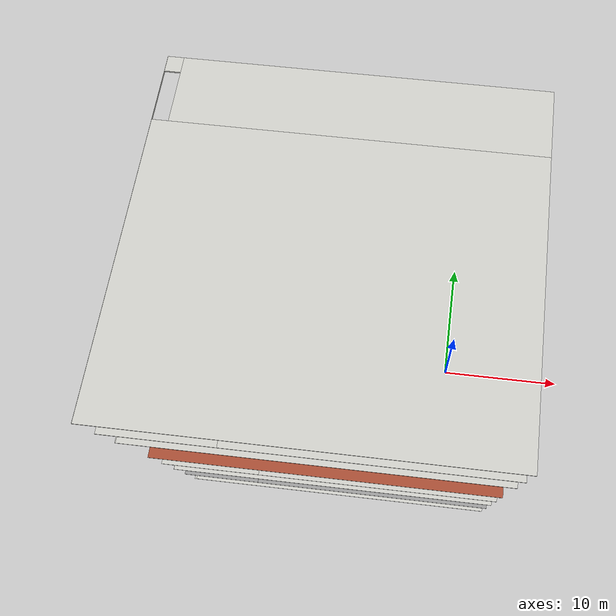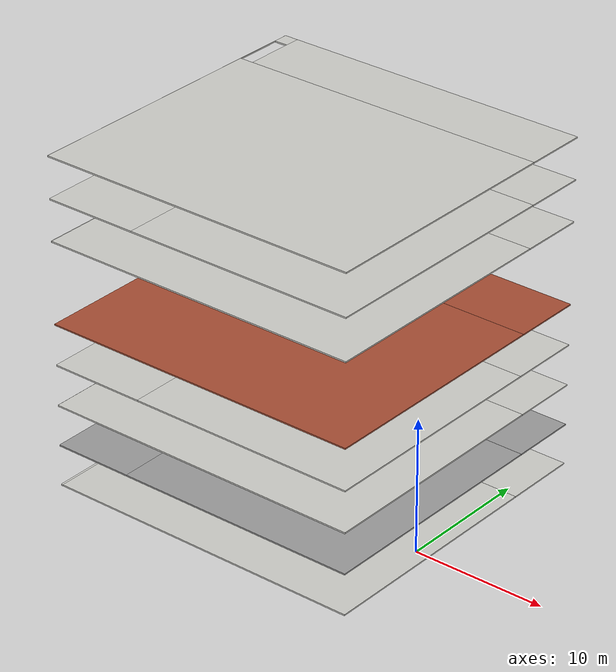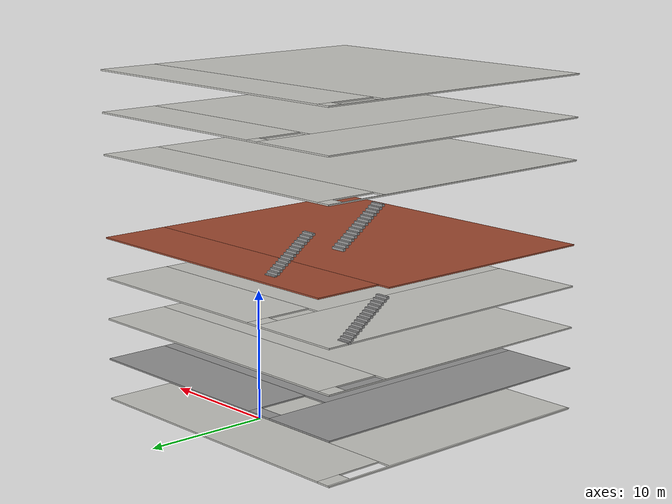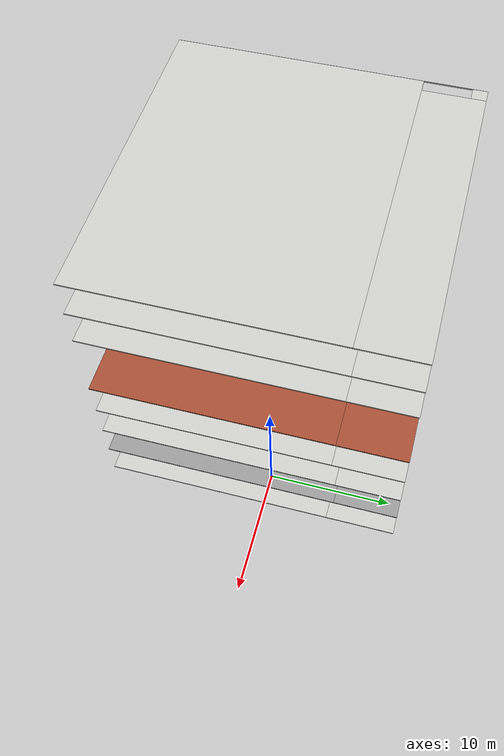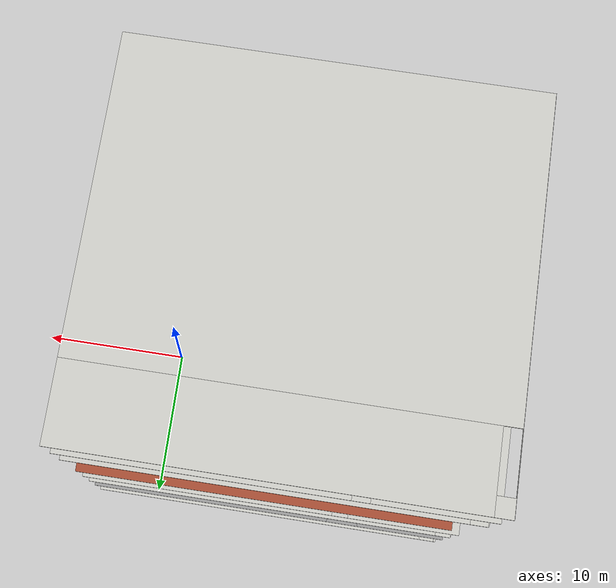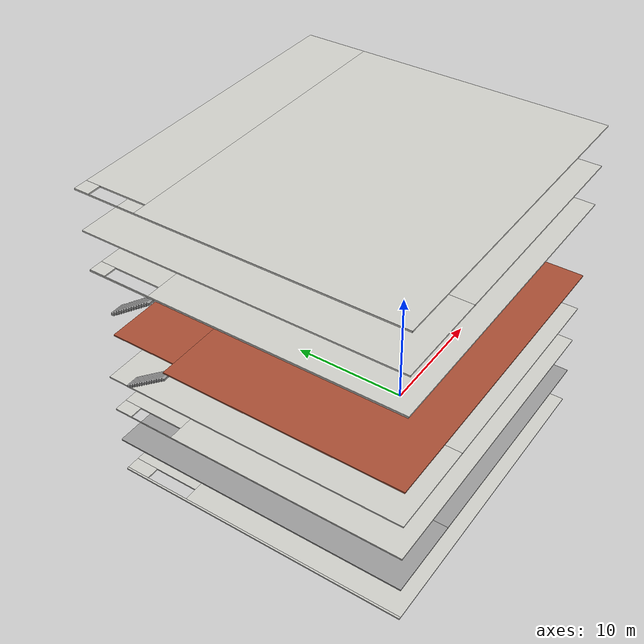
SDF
<sdf version="1.7">
 <model name="high_building">
  <pose>-8.08785 -0.655 0 0 -0 0</pose>
  <link name="Floor_0">
   <pose>0.009156 -0 3 0 -0 0</pose>
   <visual name="Floor_0_Visual_0">
    <pose>-11.8375 0 0.05 0 -0 0</pose>
    <geometry><box><size>0.151533 23.0012 0.1</size></box></geometry>
    <material>
     <script><uri>file://media/materials/scripts/gazebo.material</uri><name>Gazebo/CeilingTiled</name></script>
     <ambient>1 1 1 1</ambient>
    </material>
    <meta><layer>1</layer></meta>
   </visual>
   <collision name="Floor_0_Collision_0">
    <geometry><box><size>0.151533 23.0012 0.1</size></box></geometry>
    <pose>-11.8375 0 0.05 0 -0 0</pose>
   </collision>
   <visual name="Floor_0_Visual_1">
    <pose>0.075766 -2.684 0.05 0 -0 0</pose>
    <geometry><box><size>23.6751 17.6332 0.1</size></box></geometry>
    <material>
     <script><uri>file://media/materials/scripts/gazebo.material</uri><name>Gazebo/CeilingTiled</name></script>
     <ambient>1 1 1 1</ambient>
    </material>
    <meta><layer>1</layer></meta>
   </visual>
   <collision name="Floor_0_Collision_1">
    <geometry><box><size>23.6751 17.6332 0.1</size></box></geometry>
    <pose>0.075766 -2.684 0.05 0 -0 0</pose>
   </collision>
   <visual name="Floor_0_Visual_2">
    <pose>0.575766 8.81661 0.05 0 -0 0</pose>
    <geometry><box><size>22.6751 5.36801 0.1</size></box></geometry>
    <material>
     <script><uri>file://media/materials/scripts/gazebo.material</uri><name>Gazebo/CeilingTiled</name></script>
     <ambient>1 1 1 1</ambient>
    </material>
    <meta><layer>1</layer></meta>
   </visual>
   <collision name="Floor_0_Collision_2">
    <geometry><box><size>22.6751 5.36801 0.1</size></box></geometry>
    <pose>0.575766 8.81661 0.05 0 -0 0</pose>
   </collision>
   <visual name="Floor_0_Visual_3">
    <pose>-11.2618 10.5666 0.05 0 -0 0</pose>
    <geometry><box><size>1 1.86801 0.1</size></box></geometry>
    <material>
     <script><uri>file://media/materials/scripts/gazebo.material</uri><name>Gazebo/CeilingTiled</name></script>
     <ambient>1 1 1 1</ambient>
    </material>
    <meta><layer>1</layer></meta>
   </visual>
   <collision name="Floor_0_Collision_3">
    <geometry><box><size>1 1.86801 0.1</size></box></geometry>
    <pose>-11.2618 10.5666 0.05 0 -0 0</pose>
   </collision>
  </link>
  <link name="Floor_1">
   <pose>0.009156 -0 6 0 -0 0</pose>
   <visual name="Floor_1_Visual_0">
    <pose>-8.99477 0 0.05 0 -0 0</pose>
    <geometry><box><size>5.83706 23.0012 0.1</size></box></geometry>
    <material>
     <script><uri>file://media/materials/scripts/gazebo.material</uri><name>Gazebo/Grey</name></script>
     <ambient>1 1 1 1</ambient>
    </material>
    <meta><layer>2</layer></meta>
   </visual>
   <collision name="Floor_1_Collision_0">
    <geometry><box><size>5.83706 23.0012 0.1</size></box></geometry>
    <pose>-8.99477 0 0.05 0 -0 0</pose>
   </collision>
   <visual name="Floor_1_Visual_1">
    <pose>2.91853 -2.44136 0.05 0 -0 0</pose>
    <geometry><box><size>17.9895 18.1185 0.1</size></box></geometry>
    <material>
     <script><uri>file://media/materials/scripts/gazebo.material</uri><name>Gazebo/Grey</name></script>
     <ambient>1 1 1 1</ambient>
    </material>
    <meta><layer>2</layer></meta>
   </visual>
   <collision name="Floor_1_Collision_1">
    <geometry><box><size>17.9895 18.1185 0.1</size></box></geometry>
    <pose>2.91853 -2.44136 0.05 0 -0 0</pose>
   </collision>
   <visual name="Floor_1_Visual_2">
    <pose>3.95054 9.05926 0.05 0 -0 0</pose>
    <geometry><box><size>15.9255 4.88271 0.1</size></box></geometry>
    <material>
     <script><uri>file://media/materials/scripts/gazebo.material</uri><name>Gazebo/Grey</name></script>
     <ambient>1 1 1 1</ambient>
    </material>
    <meta><layer>2</layer></meta>
   </visual>
   <collision name="Floor_1_Collision_2">
    <geometry><box><size>15.9255 4.88271 0.1</size></box></geometry>
    <pose>3.95054 9.05926 0.05 0 -0 0</pose>
   </collision>
   <visual name="Floor_1_Visual_3">
    <pose>-5.04424 10.9955 0.05 0 -0 0</pose>
    <geometry><box><size>2.06401 1.01031 0.1</size></box></geometry>
    <material>
     <script><uri>file://media/materials/scripts/gazebo.material</uri><name>Gazebo/Grey</name></script>
     <ambient>1 1 1 1</ambient>
    </material>
    <meta><layer>2</layer></meta>
   </visual>
   <collision name="Floor_1_Collision_3">
    <geometry><box><size>2.06401 1.01031 0.1</size></box></geometry>
    <pose>-5.04424 10.9955 0.05 0 -0 0</pose>
   </collision>
  </link>
  <link name="Floor_10">
   <pose>0.009156 -0 21 0 -0 0</pose>
   <visual name="Floor_10_Visual_0">
    <pose>-11.8873 0 0.05 0 -0 0</pose>
    <geometry><box><size>0.052045 23.0012 0.1</size></box></geometry>
    <material>
     <script><uri>file://media/materials/scripts/gazebo.material</uri><name>Gazebo/CeilingTiled</name></script>
     <ambient>1 1 1 1</ambient>
    </material>
    <meta><layer>7</layer></meta>
   </visual>
   <collision name="Floor_10_Collision_0">
    <geometry><box><size>0.052045 23.0012 0.1</size></box></geometry>
    <pose>-11.8873 0 0.05 0 -0 0</pose>
   </collision>
   <visual name="Floor_10_Visual_1">
    <pose>0.026023 -2.34881 0.05 0 -0 0</pose>
    <geometry><box><size>23.7746 18.3036 0.1</size></box></geometry>
    <material>
     <script><uri>file://media/materials/scripts/gazebo.material</uri><name>Gazebo/CeilingTiled</name></script>
     <ambient>1 1 1 1</ambient>
    </material>
    <meta><layer>7</layer></meta>
   </visual>
   <collision name="Floor_10_Collision_1">
    <geometry><box><size>23.7746 18.3036 0.1</size></box></geometry>
    <pose>0.026023 -2.34881 0.05 0 -0 0</pose>
   </collision>
   <visual name="Floor_10_Visual_2">
    <pose>0.526023 9.1518 0.05 0 -0 0</pose>
    <geometry><box><size>22.7746 4.69762 0.1</size></box></geometry>
    <material>
     <script><uri>file://media/materials/scripts/gazebo.material</uri><name>Gazebo/CeilingTiled</name></script>
     <ambient>1 1 1 1</ambient>
    </material>
    <meta><layer>7</layer></meta>
   </visual>
   <collision name="Floor_10_Collision_2">
    <geometry><box><size>22.7746 4.69762 0.1</size></box></geometry>
    <pose>0.526023 9.1518 0.05 0 -0 0</pose>
   </collision>
   <visual name="Floor_10_Visual_3">
    <pose>-11.3613 10.9018 0.05 0 -0 0</pose>
    <geometry><box><size>1 1.19762 0.1</size></box></geometry>
    <material>
     <script><uri>file://media/materials/scripts/gazebo.material</uri><name>Gazebo/CeilingTiled</name></script>
     <ambient>1 1 1 1</ambient>
    </material>
    <meta><layer>7</layer></meta>
   </visual>
   <collision name="Floor_10_Collision_3">
    <geometry><box><size>1 1.19762 0.1</size></box></geometry>
    <pose>-11.3613 10.9018 0.05 0 -0 0</pose>
   </collision>
  </link>
  <link name="Floor_11">
   <pose>0.009156 -0 24 0 -0 0</pose>
   <visual name="Floor_11_Visual_0">
    <pose>-8.49253 0 0.05 0 -0 0</pose>
    <geometry><box><size>6.84155 23.0012 0.1</size></box></geometry>
    <material>
     <script><uri>file://media/materials/scripts/gazebo.material</uri><name>Gazebo/CeilingTiled</name></script>
     <ambient>1 1 1 1</ambient>
    </material>
    <meta><layer>8</layer></meta>
   </visual>
   <collision name="Floor_11_Collision_0">
    <geometry><box><size>6.84155 23.0012 0.1</size></box></geometry>
    <pose>-8.49253 0 0.05 0 -0 0</pose>
   </collision>
   <visual name="Floor_11_Visual_1">
    <pose>3.42077 -2.26086 0.05 0 -0 0</pose>
    <geometry><box><size>16.9851 18.4795 0.1</size></box></geometry>
    <material>
     <script><uri>file://media/materials/scripts/gazebo.material</uri><name>Gazebo/CeilingTiled</name></script>
     <ambient>1 1 1 1</ambient>
    </material>
    <meta><layer>8</layer></meta>
   </visual>
   <collision name="Floor_11_Collision_1">
    <geometry><box><size>16.9851 18.4795 0.1</size></box></geometry>
    <pose>3.42077 -2.26086 0.05 0 -0 0</pose>
   </collision>
   <visual name="Floor_11_Visual_2">
    <pose>3.92077 9.23975 0.05 0 -0 0</pose>
    <geometry><box><size>15.9851 4.52172 0.1</size></box></geometry>
    <material>
     <script><uri>file://media/materials/scripts/gazebo.material</uri><name>Gazebo/CeilingTiled</name></script>
     <ambient>1 1 1 1</ambient>
    </material>
    <meta><layer>8</layer></meta>
   </visual>
   <collision name="Floor_11_Collision_2">
    <geometry><box><size>15.9851 4.52172 0.1</size></box></geometry>
    <pose>3.92077 9.23975 0.05 0 -0 0</pose>
   </collision>
   <visual name="Floor_11_Visual_3">
    <pose>-4.57176 10.9898 0.05 0 -0 0</pose>
    <geometry><box><size>1 1.02172 0.1</size></box></geometry>
    <material>
     <script><uri>file://media/materials/scripts/gazebo.material</uri><name>Gazebo/CeilingTiled</name></script>
     <ambient>1 1 1 1</ambient>
    </material>
    <meta><layer>8</layer></meta>
   </visual>
   <collision name="Floor_11_Collision_3">
    <geometry><box><size>1 1.02172 0.1</size></box></geometry>
    <pose>-4.57176 10.9898 0.05 0 -0 0</pose>
   </collision>
  </link>
  <link name="Floor_12">
   <pose>0.009156 -0 27 0 -0 0</pose>
   <visual name="Floor_12_Visual_0">
    <pose>-11.9049 0 0.05 0 -0 0</pose>
    <geometry><box><size>0.016868 23.0012 0.1</size></box></geometry>
    <material>
     <script><uri>file://media/materials/scripts/gazebo.material</uri><name>Gazebo/CeilingTiled</name></script>
     <ambient>1 1 1 1</ambient>
    </material>
    <meta><layer>9</layer></meta>
   </visual>
   <collision name="Floor_12_Collision_0">
    <geometry><box><size>0.016868 23.0012 0.1</size></box></geometry>
    <pose>-11.9049 0 0.05 0 -0 0</pose>
   </collision>
   <visual name="Floor_12_Visual_1">
    <pose>0.008434 -2.29604 0.05 0 -0 0</pose>
    <geometry><box><size>23.8097 18.4091 0.1</size></box></geometry>
    <material>
     <script><uri>file://media/materials/scripts/gazebo.material</uri><name>Gazebo/CeilingTiled</name></script>
     <ambient>1 1 1 1</ambient>
    </material>
    <meta><layer>9</layer></meta>
   </visual>
   <collision name="Floor_12_Collision_1">
    <geometry><box><size>23.8097 18.4091 0.1</size></box></geometry>
    <pose>0.008434 -2.29604 0.05 0 -0 0</pose>
   </collision>
   <visual name="Floor_12_Visual_2">
    <pose>0.508434 9.20457 0.05 0 -0 0</pose>
    <geometry><box><size>22.8097 4.59208 0.1</size></box></geometry>
    <material>
     <script><uri>file://media/materials/scripts/gazebo.material</uri><name>Gazebo/CeilingTiled</name></script>
     <ambient>1 1 1 1</ambient>
    </material>
    <meta><layer>9</layer></meta>
   </visual>
   <collision name="Floor_12_Collision_2">
    <geometry><box><size>22.8097 4.59208 0.1</size></box></geometry>
    <pose>0.508434 9.20457 0.05 0 -0 0</pose>
   </collision>
   <visual name="Floor_12_Visual_3">
    <pose>-11.3964 10.9546 0.05 0 -0 0</pose>
    <geometry><box><size>1 1.09208 0.1</size></box></geometry>
    <material>
     <script><uri>file://media/materials/scripts/gazebo.material</uri><name>Gazebo/CeilingTiled</name></script>
     <ambient>1 1 1 1</ambient>
    </material>
    <meta><layer>9</layer></meta>
   </visual>
   <collision name="Floor_12_Collision_3">
    <geometry><box><size>1 1.09208 0.1</size></box></geometry>
    <pose>-11.3964 10.9546 0.05 0 -0 0</pose>
   </collision>
  </link>
  <link name="Floor_6">
   <pose>0.009156 -0 9 0 -0 0</pose>
   <visual name="Floor_6_Visual_0">
    <pose>-11.9073 0 0.05 0 -0 0</pose>
    <geometry><box><size>0.01196 23.0012 0.1</size></box></geometry>
    <material>
     <script><uri>file://media/materials/scripts/gazebo.material</uri><name>Gazebo/CeilingTiled</name></script>
     <ambient>1 1 1 1</ambient>
    </material>
    <meta><layer>3</layer></meta>
   </visual>
   <collision name="Floor_6_Collision_0">
    <geometry><box><size>0.01196 23.0012 0.1</size></box></geometry>
    <pose>-11.9073 0 0.05 0 -0 0</pose>
   </collision>
   <visual name="Floor_6_Visual_1">
    <pose>0.00598 -2.45139 0.05 0 -0 0</pose>
    <geometry><box><size>23.8147 18.0985 0.1</size></box></geometry>
    <material>
     <script><uri>file://media/materials/scripts/gazebo.material</uri><name>Gazebo/CeilingTiled</name></script>
     <ambient>1 1 1 1</ambient>
    </material>
    <meta><layer>3</layer></meta>
   </visual>
   <collision name="Floor_6_Collision_1">
    <geometry><box><size>23.8147 18.0985 0.1</size></box></geometry>
    <pose>0.00598 -2.45139 0.05 0 -0 0</pose>
   </collision>
   <visual name="Floor_6_Visual_2">
    <pose>0.50598 9.04923 0.05 0 -0 0</pose>
    <geometry><box><size>22.8147 4.90277 0.1</size></box></geometry>
    <material>
     <script><uri>file://media/materials/scripts/gazebo.material</uri><name>Gazebo/CeilingTiled</name></script>
     <ambient>1 1 1 1</ambient>
    </material>
    <meta><layer>3</layer></meta>
   </visual>
   <collision name="Floor_6_Collision_2">
    <geometry><box><size>22.8147 4.90277 0.1</size></box></geometry>
    <pose>0.50598 9.04923 0.05 0 -0 0</pose>
   </collision>
   <visual name="Floor_6_Visual_3">
    <pose>-11.4013 10.7992 0.05 0 -0 0</pose>
    <geometry><box><size>1 1.40277 0.1</size></box></geometry>
    <material>
     <script><uri>file://media/materials/scripts/gazebo.material</uri><name>Gazebo/CeilingTiled</name></script>
     <ambient>1 1 1 1</ambient>
    </material>
    <meta><layer>3</layer></meta>
   </visual>
   <collision name="Floor_6_Collision_3">
    <geometry><box><size>1 1.40277 0.1</size></box></geometry>
    <pose>-11.4013 10.7992 0.05 0 -0 0</pose>
   </collision>
  </link>
  <link name="Floor_7">
   <pose>0.009156 -0 12 0 -0 0</pose>
   <visual name="Floor_7_Visual_0">
    <pose>-8.42544 0 0.05 0 -0 0</pose>
    <geometry><box><size>6.97573 23.0012 0.1</size></box></geometry>
    <material>
     <script><uri>file://media/materials/scripts/gazebo.material</uri><name>Gazebo/CeilingTiled</name></script>
     <ambient>1 1 1 1</ambient>
    </material>
    <meta><layer>4</layer></meta>
   </visual>
   <collision name="Floor_7_Collision_0">
    <geometry><box><size>6.97573 23.0012 0.1</size></box></geometry>
    <pose>-8.42544 0 0.05 0 -0 0</pose>
   </collision>
   <visual name="Floor_7_Visual_1">
    <pose>3.48787 -2.63097 0.05 0 -0 0</pose>
    <geometry><box><size>16.8509 17.7393 0.1</size></box></geometry>
    <material>
     <script><uri>file://media/materials/scripts/gazebo.material</uri><name>Gazebo/CeilingTiled</name></script>
     <ambient>1 1 1 1</ambient>
    </material>
    <meta><layer>4</layer></meta>
   </visual>
   <collision name="Floor_7_Collision_1">
    <geometry><box><size>16.8509 17.7393 0.1</size></box></geometry>
    <pose>3.48787 -2.63097 0.05 0 -0 0</pose>
   </collision>
   <visual name="Floor_7_Visual_2">
    <pose>3.98787 8.86965 0.05 0 -0 0</pose>
    <geometry><box><size>15.8509 5.26193 0.1</size></box></geometry>
    <material>
     <script><uri>file://media/materials/scripts/gazebo.material</uri><name>Gazebo/CeilingTiled</name></script>
     <ambient>1 1 1 1</ambient>
    </material>
    <meta><layer>4</layer></meta>
   </visual>
   <collision name="Floor_7_Collision_2">
    <geometry><box><size>15.8509 5.26193 0.1</size></box></geometry>
    <pose>3.98787 8.86965 0.05 0 -0 0</pose>
   </collision>
   <visual name="Floor_7_Visual_3">
    <pose>-4.43757 10.6196 0.05 0 -0 0</pose>
    <geometry><box><size>1 1.76193 0.1</size></box></geometry>
    <material>
     <script><uri>file://media/materials/scripts/gazebo.material</uri><name>Gazebo/CeilingTiled</name></script>
     <ambient>1 1 1 1</ambient>
    </material>
    <meta><layer>4</layer></meta>
   </visual>
   <collision name="Floor_7_Collision_3">
    <geometry><box><size>1 1.76193 0.1</size></box></geometry>
    <pose>-4.43757 10.6196 0.05 0 -0 0</pose>
   </collision>
  </link>
  <link name="Floor_8">
   <pose>0.009156 -0 15 0 -0 0</pose>
   <visual name="Floor_8_Visual_0">
    <pose>0 -2.54229 0.05 0 -0 0</pose>
    <geometry><box><size>23.8266 17.9166 0.1</size></box></geometry>
    <material>
     <script><uri>file://media/materials/scripts/gazebo.material</uri><name>Gazebo/Bricks</name></script>
     <ambient>1 1 1 1</ambient>
    </material>
    <meta><layer>5</layer></meta>
   </visual>
   <collision name="Floor_8_Collision_0">
    <geometry><box><size>23.8266 17.9166 0.1</size></box></geometry>
    <pose>0 -2.54229 0.05 0 -0 0</pose>
   </collision>
   <visual name="Floor_8_Visual_1">
    <pose>0.490844 8.95832 0.05 0 -0 0</pose>
    <geometry><box><size>22.8449 5.08458 0.1</size></box></geometry>
    <material>
     <script><uri>file://media/materials/scripts/gazebo.material</uri><name>Gazebo/Bricks</name></script>
     <ambient>1 1 1 1</ambient>
    </material>
    <meta><layer>5</layer></meta>
   </visual>
   <collision name="Floor_8_Collision_1">
    <geometry><box><size>22.8449 5.08458 0.1</size></box></geometry>
    <pose>0.490844 8.95832 0.05 0 -0 0</pose>
   </collision>
  </link>
  <link name="Stairs_7">
   <visual name="Stairs_7_Visual_0">
    <pose>-11.4225 9.79936 12.0833 0 -0 0</pose>
    <geometry><box><size>1 0.233333 0.166667</size></box></geometry>
    <material>
     <script><uri>file://media/materials/scripts/gazebo.material</uri><name>Gazebo/Grey</name></script>
     <ambient>1 1 1 1</ambient>
    </material>
    <meta><layer>4</layer></meta>
   </visual>
   <collision name="Stairs_7_Collision_0">
    <geometry><box><size>1 0.233333 0.166667</size></box></geometry>
    <pose>-11.4225 9.79936 12.0833 0 -0 0</pose>
   </collision>
   <visual name="Stairs_7_Visual_1">
    <pose>-11.4225 9.56603 12.25 0 -0 0</pose>
    <geometry><box><size>1 0.233333 0.166667</size></box></geometry>
    <material>
     <script><uri>file://media/materials/scripts/gazebo.material</uri><name>Gazebo/Grey</name></script>
     <ambient>1 1 1 1</ambient>
    </material>
    <meta><layer>4</layer></meta>
   </visual>
   <collision name="Stairs_7_Collision_1">
    <geometry><box><size>1 0.233333 0.166667</size></box></geometry>
    <pose>-11.4225 9.56603 12.25 0 -0 0</pose>
   </collision>
   <visual name="Stairs_7_Visual_2">
    <pose>-11.4225 9.33269 12.4167 0 -0 0</pose>
    <geometry><box><size>1 0.233333 0.166667</size></box></geometry>
    <material>
     <script><uri>file://media/materials/scripts/gazebo.material</uri><name>Gazebo/Grey</name></script>
     <ambient>1 1 1 1</ambient>
    </material>
    <meta><layer>4</layer></meta>
   </visual>
   <collision name="Stairs_7_Collision_2">
    <geometry><box><size>1 0.233333 0.166667</size></box></geometry>
    <pose>-11.4225 9.33269 12.4167 0 -0 0</pose>
   </collision>
   <visual name="Stairs_7_Visual_3">
    <pose>-11.4225 9.09936 12.5833 0 -0 0</pose>
    <geometry><box><size>1 0.233333 0.166667</size></box></geometry>
    <material>
     <script><uri>file://media/materials/scripts/gazebo.material</uri><name>Gazebo/Grey</name></script>
     <ambient>1 1 1 1</ambient>
    </material>
    <meta><layer>4</layer></meta>
   </visual>
   <collision name="Stairs_7_Collision_3">
    <geometry><box><size>1 0.233333 0.166667</size></box></geometry>
    <pose>-11.4225 9.09936 12.5833 0 -0 0</pose>
   </collision>
   <visual name="Stairs_7_Visual_4">
    <pose>-11.4225 8.86603 12.75 0 -0 0</pose>
    <geometry><box><size>1 0.233333 0.166667</size></box></geometry>
    <material>
     <script><uri>file://media/materials/scripts/gazebo.material</uri><name>Gazebo/Grey</name></script>
     <ambient>1 1 1 1</ambient>
    </material>
    <meta><layer>4</layer></meta>
   </visual>
   <collision name="Stairs_7_Collision_4">
    <geometry><box><size>1 0.233333 0.166667</size></box></geometry>
    <pose>-11.4225 8.86603 12.75 0 -0 0</pose>
   </collision>
   <visual name="Stairs_7_Visual_5">
    <pose>-11.4225 8.63269 12.9167 0 -0 0</pose>
    <geometry><box><size>1 0.233333 0.166667</size></box></geometry>
    <material>
     <script><uri>file://media/materials/scripts/gazebo.material</uri><name>Gazebo/Grey</name></script>
     <ambient>1 1 1 1</ambient>
    </material>
    <meta><layer>4</layer></meta>
   </visual>
   <collision name="Stairs_7_Collision_5">
    <geometry><box><size>1 0.233333 0.166667</size></box></geometry>
    <pose>-11.4225 8.63269 12.9167 0 -0 0</pose>
   </collision>
   <visual name="Stairs_7_Visual_6">
    <pose>-11.4225 8.39936 13.0833 0 -0 0</pose>
    <geometry><box><size>1 0.233333 0.166667</size></box></geometry>
    <material>
     <script><uri>file://media/materials/scripts/gazebo.material</uri><name>Gazebo/Grey</name></script>
     <ambient>1 1 1 1</ambient>
    </material>
    <meta><layer>4</layer></meta>
   </visual>
   <collision name="Stairs_7_Collision_6">
    <geometry><box><size>1 0.233333 0.166667</size></box></geometry>
    <pose>-11.4225 8.39936 13.0833 0 -0 0</pose>
   </collision>
   <visual name="Stairs_7_Visual_7">
    <pose>-11.4225 8.16603 13.25 0 -0 0</pose>
    <geometry><box><size>1 0.233333 0.166667</size></box></geometry>
    <material>
     <script><uri>file://media/materials/scripts/gazebo.material</uri><name>Gazebo/Grey</name></script>
     <ambient>1 1 1 1</ambient>
    </material>
    <meta><layer>4</layer></meta>
   </visual>
   <collision name="Stairs_7_Collision_7">
    <geometry><box><size>1 0.233333 0.166667</size></box></geometry>
    <pose>-11.4225 8.16603 13.25 0 -0 0</pose>
   </collision>
   <visual name="Stairs_7_Visual_8">
    <pose>-11.4225 7.93269 13.4167 0 -0 0</pose>
    <geometry><box><size>1 0.233333 0.166667</size></box></geometry>
    <material>
     <script><uri>file://media/materials/scripts/gazebo.material</uri><name>Gazebo/Grey</name></script>
     <ambient>1 1 1 1</ambient>
    </material>
    <meta><layer>4</layer></meta>
   </visual>
   <collision name="Stairs_7_Collision_8">
    <geometry><box><size>1 0.233333 0.166667</size></box></geometry>
    <pose>-11.4225 7.93269 13.4167 0 -0 0</pose>
   </collision>
   <visual name="Stairs_7_Visual_9">
    <pose>-11.4225 7.69936 13.5833 0 -0 0</pose>
    <geometry><box><size>1 0.233333 0.166667</size></box></geometry>
    <material>
     <script><uri>file://media/materials/scripts/gazebo.material</uri><name>Gazebo/Grey</name></script>
     <ambient>1 1 1 1</ambient>
    </material>
    <meta><layer>4</layer></meta>
   </visual>
   <collision name="Stairs_7_Collision_9">
    <geometry><box><size>1 0.233333 0.166667</size></box></geometry>
    <pose>-11.4225 7.69936 13.5833 0 -0 0</pose>
   </collision>
   <visual name="Stairs_7_Visual_10">
    <pose>-11.4225 7.46603 13.75 0 -0 0</pose>
    <geometry><box><size>1 0.233333 0.166667</size></box></geometry>
    <material>
     <script><uri>file://media/materials/scripts/gazebo.material</uri><name>Gazebo/Grey</name></script>
     <ambient>1 1 1 1</ambient>
    </material>
    <meta><layer>4</layer></meta>
   </visual>
   <collision name="Stairs_7_Collision_10">
    <geometry><box><size>1 0.233333 0.166667</size></box></geometry>
    <pose>-11.4225 7.46603 13.75 0 -0 0</pose>
   </collision>
   <visual name="Stairs_7_Visual_11">
    <pose>-11.4225 7.23269 13.9167 0 -0 0</pose>
    <geometry><box><size>1 0.233333 0.166667</size></box></geometry>
    <material>
     <script><uri>file://media/materials/scripts/gazebo.material</uri><name>Gazebo/Grey</name></script>
     <ambient>1 1 1 1</ambient>
    </material>
    <meta><layer>4</layer></meta>
   </visual>
   <collision name="Stairs_7_Collision_11">
    <geometry><box><size>1 0.233333 0.166667</size></box></geometry>
    <pose>-11.4225 7.23269 13.9167 0 -0 0</pose>
   </collision>
   <visual name="Stairs_7_Visual_12">
    <pose>-11.4225 6.99936 14.0833 0 -0 0</pose>
    <geometry><box><size>1 0.233333 0.166667</size></box></geometry>
    <material>
     <script><uri>file://media/materials/scripts/gazebo.material</uri><name>Gazebo/Grey</name></script>
     <ambient>1 1 1 1</ambient>
    </material>
    <meta><layer>4</layer></meta>
   </visual>
   <collision name="Stairs_7_Collision_12">
    <geometry><box><size>1 0.233333 0.166667</size></box></geometry>
    <pose>-11.4225 6.99936 14.0833 0 -0 0</pose>
   </collision>
   <visual name="Stairs_7_Visual_13">
    <pose>-11.4225 6.76603 14.25 0 -0 0</pose>
    <geometry><box><size>1 0.233333 0.166667</size></box></geometry>
    <material>
     <script><uri>file://media/materials/scripts/gazebo.material</uri><name>Gazebo/Grey</name></script>
     <ambient>1 1 1 1</ambient>
    </material>
    <meta><layer>4</layer></meta>
   </visual>
   <collision name="Stairs_7_Collision_13">
    <geometry><box><size>1 0.233333 0.166667</size></box></geometry>
    <pose>-11.4225 6.76603 14.25 0 -0 0</pose>
   </collision>
   <visual name="Stairs_7_Visual_14">
    <pose>-11.4225 6.53269 14.4167 0 -0 0</pose>
    <geometry><box><size>1 0.233333 0.166667</size></box></geometry>
    <material>
     <script><uri>file://media/materials/scripts/gazebo.material</uri><name>Gazebo/Grey</name></script>
     <ambient>1 1 1 1</ambient>
    </material>
    <meta><layer>4</layer></meta>
   </visual>
   <collision name="Stairs_7_Collision_14">
    <geometry><box><size>1 0.233333 0.166667</size></box></geometry>
    <pose>-11.4225 6.53269 14.4167 0 -0 0</pose>
   </collision>
  </link>
  <link name="Stairs_8">
   <visual name="Stairs_8_Visual_0">
    <pose>-4.63296 10.0456 15.0833 0 -0 0</pose>
    <geometry><box><size>1 0.233333 0.166667</size></box></geometry>
    <material>
     <script><uri>file://media/materials/scripts/gazebo.material</uri><name>Gazebo/Grey</name></script>
     <ambient>1 1 1 1</ambient>
    </material>
    <meta><layer>5</layer></meta>
   </visual>
   <collision name="Stairs_8_Collision_0">
    <geometry><box><size>1 0.233333 0.166667</size></box></geometry>
    <pose>-4.63296 10.0456 15.0833 0 -0 0</pose>
   </collision>
   <visual name="Stairs_8_Visual_1">
    <pose>-4.63296 9.81228 15.25 0 -0 0</pose>
    <geometry><box><size>1 0.233333 0.166667</size></box></geometry>
    <material>
     <script><uri>file://media/materials/scripts/gazebo.material</uri><name>Gazebo/Grey</name></script>
     <ambient>1 1 1 1</ambient>
    </material>
    <meta><layer>5</layer></meta>
   </visual>
   <collision name="Stairs_8_Collision_1">
    <geometry><box><size>1 0.233333 0.166667</size></box></geometry>
    <pose>-4.63296 9.81228 15.25 0 -0 0</pose>
   </collision>
   <visual name="Stairs_8_Visual_2">
    <pose>-4.63296 9.57894 15.4167 0 -0 0</pose>
    <geometry><box><size>1 0.233333 0.166667</size></box></geometry>
    <material>
     <script><uri>file://media/materials/scripts/gazebo.material</uri><name>Gazebo/Grey</name></script>
     <ambient>1 1 1 1</ambient>
    </material>
    <meta><layer>5</layer></meta>
   </visual>
   <collision name="Stairs_8_Collision_2">
    <geometry><box><size>1 0.233333 0.166667</size></box></geometry>
    <pose>-4.63296 9.57894 15.4167 0 -0 0</pose>
   </collision>
   <visual name="Stairs_8_Visual_3">
    <pose>-4.63296 9.34561 15.5833 0 -0 0</pose>
    <geometry><box><size>1 0.233333 0.166667</size></box></geometry>
    <material>
     <script><uri>file://media/materials/scripts/gazebo.material</uri><name>Gazebo/Grey</name></script>
     <ambient>1 1 1 1</ambient>
    </material>
    <meta><layer>5</layer></meta>
   </visual>
   <collision name="Stairs_8_Collision_3">
    <geometry><box><size>1 0.233333 0.166667</size></box></geometry>
    <pose>-4.63296 9.34561 15.5833 0 -0 0</pose>
   </collision>
   <visual name="Stairs_8_Visual_4">
    <pose>-4.63296 9.11228 15.75 0 -0 0</pose>
    <geometry><box><size>1 0.233333 0.166667</size></box></geometry>
    <material>
     <script><uri>file://media/materials/scripts/gazebo.material</uri><name>Gazebo/Grey</name></script>
     <ambient>1 1 1 1</ambient>
    </material>
    <meta><layer>5</layer></meta>
   </visual>
   <collision name="Stairs_8_Collision_4">
    <geometry><box><size>1 0.233333 0.166667</size></box></geometry>
    <pose>-4.63296 9.11228 15.75 0 -0 0</pose>
   </collision>
   <visual name="Stairs_8_Visual_5">
    <pose>-4.63296 8.87894 15.9167 0 -0 0</pose>
    <geometry><box><size>1 0.233333 0.166667</size></box></geometry>
    <material>
     <script><uri>file://media/materials/scripts/gazebo.material</uri><name>Gazebo/Grey</name></script>
     <ambient>1 1 1 1</ambient>
    </material>
    <meta><layer>5</layer></meta>
   </visual>
   <collision name="Stairs_8_Collision_5">
    <geometry><box><size>1 0.233333 0.166667</size></box></geometry>
    <pose>-4.63296 8.87894 15.9167 0 -0 0</pose>
   </collision>
   <visual name="Stairs_8_Visual_6">
    <pose>-4.63296 8.64561 16.0833 0 -0 0</pose>
    <geometry><box><size>1 0.233333 0.166667</size></box></geometry>
    <material>
     <script><uri>file://media/materials/scripts/gazebo.material</uri><name>Gazebo/Grey</name></script>
     <ambient>1 1 1 1</ambient>
    </material>
    <meta><layer>5</layer></meta>
   </visual>
   <collision name="Stairs_8_Collision_6">
    <geometry><box><size>1 0.233333 0.166667</size></box></geometry>
    <pose>-4.63296 8.64561 16.0833 0 -0 0</pose>
   </collision>
   <visual name="Stairs_8_Visual_7">
    <pose>-4.63296 8.41228 16.25 0 -0 0</pose>
    <geometry><box><size>1 0.233333 0.166667</size></box></geometry>
    <material>
     <script><uri>file://media/materials/scripts/gazebo.material</uri><name>Gazebo/Grey</name></script>
     <ambient>1 1 1 1</ambient>
    </material>
    <meta><layer>5</layer></meta>
   </visual>
   <collision name="Stairs_8_Collision_7">
    <geometry><box><size>1 0.233333 0.166667</size></box></geometry>
    <pose>-4.63296 8.41228 16.25 0 -0 0</pose>
   </collision>
   <visual name="Stairs_8_Visual_8">
    <pose>-4.63296 8.17895 16.4167 0 -0 0</pose>
    <geometry><box><size>1 0.233333 0.166667</size></box></geometry>
    <material>
     <script><uri>file://media/materials/scripts/gazebo.material</uri><name>Gazebo/Grey</name></script>
     <ambient>1 1 1 1</ambient>
    </material>
    <meta><layer>5</layer></meta>
   </visual>
   <collision name="Stairs_8_Collision_8">
    <geometry><box><size>1 0.233333 0.166667</size></box></geometry>
    <pose>-4.63296 8.17895 16.4167 0 -0 0</pose>
   </collision>
   <visual name="Stairs_8_Visual_9">
    <pose>-4.63296 7.94561 16.5833 0 -0 0</pose>
    <geometry><box><size>1 0.233333 0.166667</size></box></geometry>
    <material>
     <script><uri>file://media/materials/scripts/gazebo.material</uri><name>Gazebo/Grey</name></script>
     <ambient>1 1 1 1</ambient>
    </material>
    <meta><layer>5</layer></meta>
   </visual>
   <collision name="Stairs_8_Collision_9">
    <geometry><box><size>1 0.233333 0.166667</size></box></geometry>
    <pose>-4.63296 7.94561 16.5833 0 -0 0</pose>
   </collision>
   <visual name="Stairs_8_Visual_10">
    <pose>-4.63296 7.71228 16.75 0 -0 0</pose>
    <geometry><box><size>1 0.233333 0.166667</size></box></geometry>
    <material>
     <script><uri>file://media/materials/scripts/gazebo.material</uri><name>Gazebo/Grey</name></script>
     <ambient>1 1 1 1</ambient>
    </material>
    <meta><layer>5</layer></meta>
   </visual>
   <collision name="Stairs_8_Collision_10">
    <geometry><box><size>1 0.233333 0.166667</size></box></geometry>
    <pose>-4.63296 7.71228 16.75 0 -0 0</pose>
   </collision>
   <visual name="Stairs_8_Visual_11">
    <pose>-4.63296 7.47895 16.9167 0 -0 0</pose>
    <geometry><box><size>1 0.233333 0.166667</size></box></geometry>
    <material>
     <script><uri>file://media/materials/scripts/gazebo.material</uri><name>Gazebo/Grey</name></script>
     <ambient>1 1 1 1</ambient>
    </material>
    <meta><layer>5</layer></meta>
   </visual>
   <collision name="Stairs_8_Collision_11">
    <geometry><box><size>1 0.233333 0.166667</size></box></geometry>
    <pose>-4.63296 7.47895 16.9167 0 -0 0</pose>
   </collision>
   <visual name="Stairs_8_Visual_12">
    <pose>-4.63296 7.24561 17.0833 0 -0 0</pose>
    <geometry><box><size>1 0.233333 0.166667</size></box></geometry>
    <material>
     <script><uri>file://media/materials/scripts/gazebo.material</uri><name>Gazebo/Grey</name></script>
     <ambient>1 1 1 1</ambient>
    </material>
    <meta><layer>5</layer></meta>
   </visual>
   <collision name="Stairs_8_Collision_12">
    <geometry><box><size>1 0.233333 0.166667</size></box></geometry>
    <pose>-4.63296 7.24561 17.0833 0 -0 0</pose>
   </collision>
   <visual name="Stairs_8_Visual_13">
    <pose>-4.63296 7.01228 17.25 0 -0 0</pose>
    <geometry><box><size>1 0.233333 0.166667</size></box></geometry>
    <material>
     <script><uri>file://media/materials/scripts/gazebo.material</uri><name>Gazebo/Grey</name></script>
     <ambient>1 1 1 1</ambient>
    </material>
    <meta><layer>5</layer></meta>
   </visual>
   <collision name="Stairs_8_Collision_13">
    <geometry><box><size>1 0.233333 0.166667</size></box></geometry>
    <pose>-4.63296 7.01228 17.25 0 -0 0</pose>
   </collision>
   <visual name="Stairs_8_Visual_14">
    <pose>-4.63296 6.77895 17.4167 0 -0 0</pose>
    <geometry><box><size>1 0.233333 0.166667</size></box></geometry>
    <material>
     <script><uri>file://media/materials/scripts/gazebo.material</uri><name>Gazebo/Grey</name></script>
     <ambient>1 1 1 1</ambient>
    </material>
    <meta><layer>5</layer></meta>
   </visual>
   <collision name="Stairs_8_Collision_14">
    <geometry><box><size>1 0.233333 0.166667</size></box></geometry>
    <pose>-4.63296 6.77895 17.4167 0 -0 0</pose>
   </collision>
  </link>
  <link name="Stairs_9">
   <visual name="Stairs_9_Visual_0">
    <pose>-11.3521 10.1863 18.0833 0 -0 0</pose>
    <geometry><box><size>1 0.233333 0.166667</size></box></geometry>
    <material>
     <script><uri>file://media/materials/scripts/gazebo.material</uri><name>Gazebo/Grey</name></script>
     <ambient>1 1 1 1</ambient>
    </material>
    <meta><layer>6</layer></meta>
   </visual>
   <collision name="Stairs_9_Collision_0">
    <geometry><box><size>1 0.233333 0.166667</size></box></geometry>
    <pose>-11.3521 10.1863 18.0833 0 -0 0</pose>
   </collision>
   <visual name="Stairs_9_Visual_1">
    <pose>-11.3521 9.95299 18.25 0 -0 0</pose>
    <geometry><box><size>1 0.233333 0.166667</size></box></geometry>
    <material>
     <script><uri>file://media/materials/scripts/gazebo.material</uri><name>Gazebo/Grey</name></script>
     <ambient>1 1 1 1</ambient>
    </material>
    <meta><layer>6</layer></meta>
   </visual>
   <collision name="Stairs_9_Collision_1">
    <geometry><box><size>1 0.233333 0.166667</size></box></geometry>
    <pose>-11.3521 9.95299 18.25 0 -0 0</pose>
   </collision>
   <visual name="Stairs_9_Visual_2">
    <pose>-11.3521 9.71966 18.4167 0 -0 0</pose>
    <geometry><box><size>1 0.233333 0.166667</size></box></geometry>
    <material>
     <script><uri>file://media/materials/scripts/gazebo.material</uri><name>Gazebo/Grey</name></script>
     <ambient>1 1 1 1</ambient>
    </material>
    <meta><layer>6</layer></meta>
   </visual>
   <collision name="Stairs_9_Collision_2">
    <geometry><box><size>1 0.233333 0.166667</size></box></geometry>
    <pose>-11.3521 9.71966 18.4167 0 -0 0</pose>
   </collision>
   <visual name="Stairs_9_Visual_3">
    <pose>-11.3521 9.48633 18.5833 0 -0 0</pose>
    <geometry><box><size>1 0.233333 0.166667</size></box></geometry>
    <material>
     <script><uri>file://media/materials/scripts/gazebo.material</uri><name>Gazebo/Grey</name></script>
     <ambient>1 1 1 1</ambient>
    </material>
    <meta><layer>6</layer></meta>
   </visual>
   <collision name="Stairs_9_Collision_3">
    <geometry><box><size>1 0.233333 0.166667</size></box></geometry>
    <pose>-11.3521 9.48633 18.5833 0 -0 0</pose>
   </collision>
   <visual name="Stairs_9_Visual_4">
    <pose>-11.3521 9.25299 18.75 0 -0 0</pose>
    <geometry><box><size>1 0.233333 0.166667</size></box></geometry>
    <material>
     <script><uri>file://media/materials/scripts/gazebo.material</uri><name>Gazebo/Grey</name></script>
     <ambient>1 1 1 1</ambient>
    </material>
    <meta><layer>6</layer></meta>
   </visual>
   <collision name="Stairs_9_Collision_4">
    <geometry><box><size>1 0.233333 0.166667</size></box></geometry>
    <pose>-11.3521 9.25299 18.75 0 -0 0</pose>
   </collision>
   <visual name="Stairs_9_Visual_5">
    <pose>-11.3521 9.01966 18.9167 0 -0 0</pose>
    <geometry><box><size>1 0.233333 0.166667</size></box></geometry>
    <material>
     <script><uri>file://media/materials/scripts/gazebo.material</uri><name>Gazebo/Grey</name></script>
     <ambient>1 1 1 1</ambient>
    </material>
    <meta><layer>6</layer></meta>
   </visual>
   <collision name="Stairs_9_Collision_5">
    <geometry><box><size>1 0.233333 0.166667</size></box></geometry>
    <pose>-11.3521 9.01966 18.9167 0 -0 0</pose>
   </collision>
   <visual name="Stairs_9_Visual_6">
    <pose>-11.3521 8.78633 19.0833 0 -0 0</pose>
    <geometry><box><size>1 0.233333 0.166667</size></box></geometry>
    <material>
     <script><uri>file://media/materials/scripts/gazebo.material</uri><name>Gazebo/Grey</name></script>
     <ambient>1 1 1 1</ambient>
    </material>
    <meta><layer>6</layer></meta>
   </visual>
   <collision name="Stairs_9_Collision_6">
    <geometry><box><size>1 0.233333 0.166667</size></box></geometry>
    <pose>-11.3521 8.78633 19.0833 0 -0 0</pose>
   </collision>
   <visual name="Stairs_9_Visual_7">
    <pose>-11.3521 8.55299 19.25 0 -0 0</pose>
    <geometry><box><size>1 0.233333 0.166667</size></box></geometry>
    <material>
     <script><uri>file://media/materials/scripts/gazebo.material</uri><name>Gazebo/Grey</name></script>
     <ambient>1 1 1 1</ambient>
    </material>
    <meta><layer>6</layer></meta>
   </visual>
   <collision name="Stairs_9_Collision_7">
    <geometry><box><size>1 0.233333 0.166667</size></box></geometry>
    <pose>-11.3521 8.55299 19.25 0 -0 0</pose>
   </collision>
   <visual name="Stairs_9_Visual_8">
    <pose>-11.3521 8.31966 19.4167 0 -0 0</pose>
    <geometry><box><size>1 0.233333 0.166667</size></box></geometry>
    <material>
     <script><uri>file://media/materials/scripts/gazebo.material</uri><name>Gazebo/Grey</name></script>
     <ambient>1 1 1 1</ambient>
    </material>
    <meta><layer>6</layer></meta>
   </visual>
   <collision name="Stairs_9_Collision_8">
    <geometry><box><size>1 0.233333 0.166667</size></box></geometry>
    <pose>-11.3521 8.31966 19.4167 0 -0 0</pose>
   </collision>
   <visual name="Stairs_9_Visual_9">
    <pose>-11.3521 8.08633 19.5833 0 -0 0</pose>
    <geometry><box><size>1 0.233333 0.166667</size></box></geometry>
    <material>
     <script><uri>file://media/materials/scripts/gazebo.material</uri><name>Gazebo/Grey</name></script>
     <ambient>1 1 1 1</ambient>
    </material>
    <meta><layer>6</layer></meta>
   </visual>
   <collision name="Stairs_9_Collision_9">
    <geometry><box><size>1 0.233333 0.166667</size></box></geometry>
    <pose>-11.3521 8.08633 19.5833 0 -0 0</pose>
   </collision>
   <visual name="Stairs_9_Visual_10">
    <pose>-11.3521 7.85299 19.75 0 -0 0</pose>
    <geometry><box><size>1 0.233333 0.166667</size></box></geometry>
    <material>
     <script><uri>file://media/materials/scripts/gazebo.material</uri><name>Gazebo/Grey</name></script>
     <ambient>1 1 1 1</ambient>
    </material>
    <meta><layer>6</layer></meta>
   </visual>
   <collision name="Stairs_9_Collision_10">
    <geometry><box><size>1 0.233333 0.166667</size></box></geometry>
    <pose>-11.3521 7.85299 19.75 0 -0 0</pose>
   </collision>
   <visual name="Stairs_9_Visual_11">
    <pose>-11.3521 7.61966 19.9167 0 -0 0</pose>
    <geometry><box><size>1 0.233333 0.166667</size></box></geometry>
    <material>
     <script><uri>file://media/materials/scripts/gazebo.material</uri><name>Gazebo/Grey</name></script>
     <ambient>1 1 1 1</ambient>
    </material>
    <meta><layer>6</layer></meta>
   </visual>
   <collision name="Stairs_9_Collision_11">
    <geometry><box><size>1 0.233333 0.166667</size></box></geometry>
    <pose>-11.3521 7.61966 19.9167 0 -0 0</pose>
   </collision>
   <visual name="Stairs_9_Visual_12">
    <pose>-11.3521 7.38633 20.0833 0 -0 0</pose>
    <geometry><box><size>1 0.233333 0.166667</size></box></geometry>
    <material>
     <script><uri>file://media/materials/scripts/gazebo.material</uri><name>Gazebo/Grey</name></script>
     <ambient>1 1 1 1</ambient>
    </material>
    <meta><layer>6</layer></meta>
   </visual>
   <collision name="Stairs_9_Collision_12">
    <geometry><box><size>1 0.233333 0.166667</size></box></geometry>
    <pose>-11.3521 7.38633 20.0833 0 -0 0</pose>
   </collision>
   <visual name="Stairs_9_Visual_13">
    <pose>-11.3521 7.15299 20.25 0 -0 0</pose>
    <geometry><box><size>1 0.233333 0.166667</size></box></geometry>
    <material>
     <script><uri>file://media/materials/scripts/gazebo.material</uri><name>Gazebo/Grey</name></script>
     <ambient>1 1 1 1</ambient>
    </material>
    <meta><layer>6</layer></meta>
   </visual>
   <collision name="Stairs_9_Collision_13">
    <geometry><box><size>1 0.233333 0.166667</size></box></geometry>
    <pose>-11.3521 7.15299 20.25 0 -0 0</pose>
   </collision>
   <visual name="Stairs_9_Visual_14">
    <pose>-11.3521 6.91966 20.4167 0 -0 0</pose>
    <geometry><box><size>1 0.233333 0.166667</size></box></geometry>
    <material>
     <script><uri>file://media/materials/scripts/gazebo.material</uri><name>Gazebo/Grey</name></script>
     <ambient>1 1 1 1</ambient>
    </material>
    <meta><layer>6</layer></meta>
   </visual>
   <collision name="Stairs_9_Collision_14">
    <geometry><box><size>1 0.233333 0.166667</size></box></geometry>
    <pose>-11.3521 6.91966 20.4167 0 -0 0</pose>
   </collision>
  </link>
  <static>1</static>
 </model>
</sdf>
